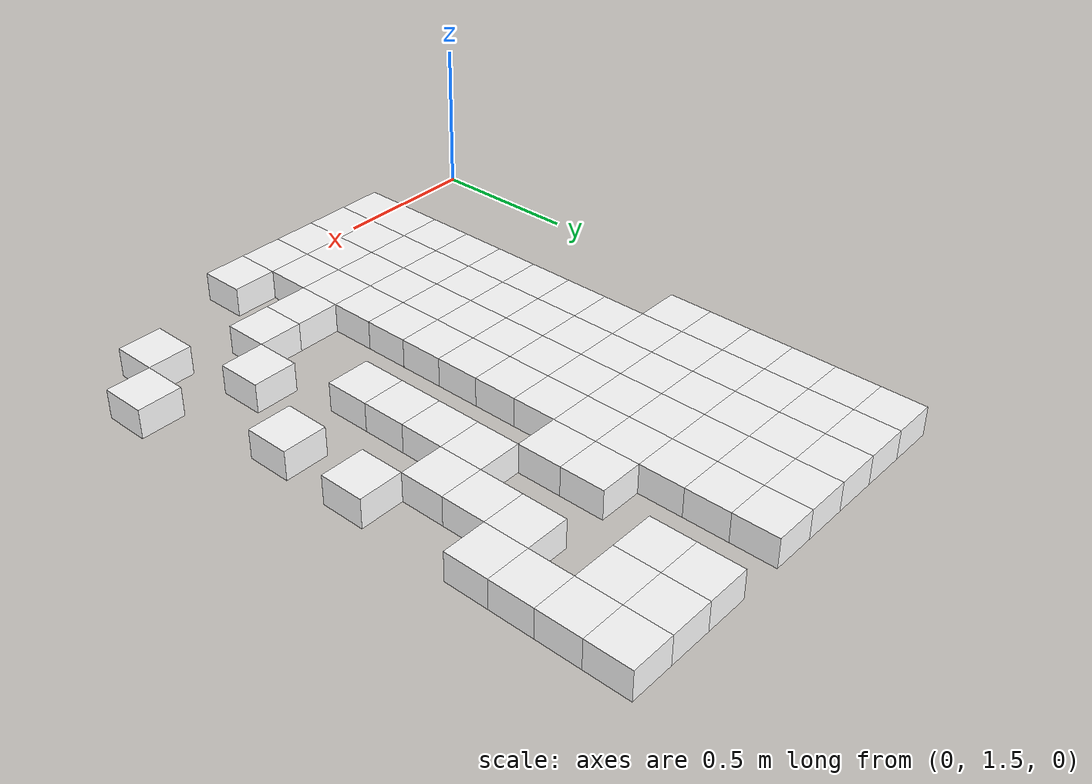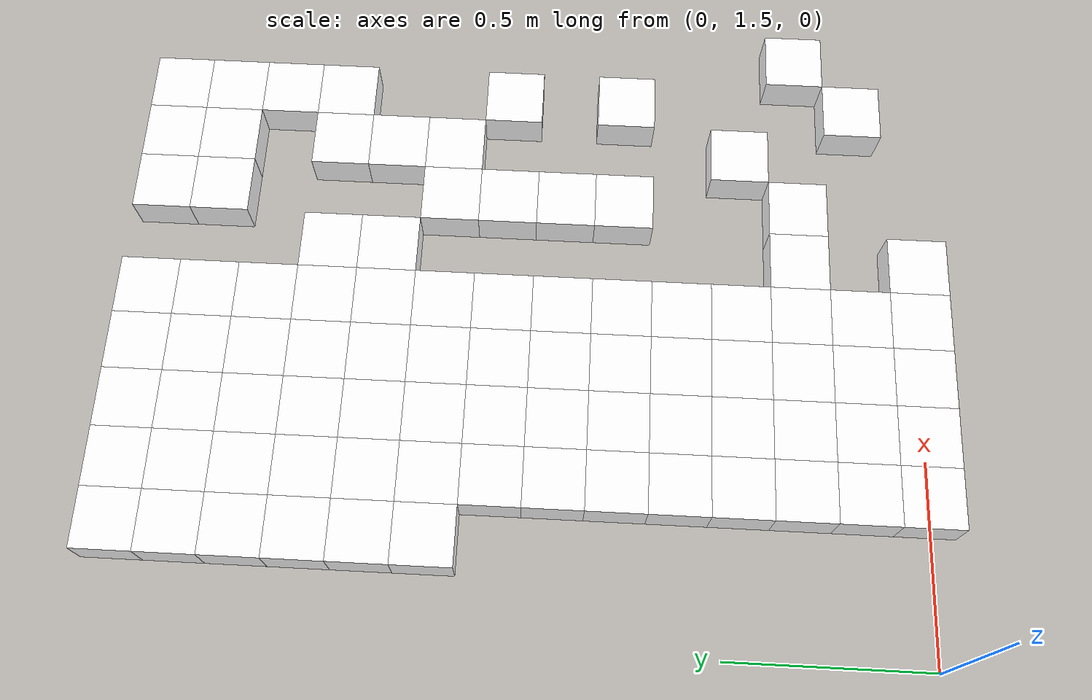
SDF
<sdf version="1.7">
 <world name="default">
  <include><uri>model://sun</uri></include>
  <model name="static_environment">
   <static>true</static>
   <link name="region_136">
    <pose>0.39999999999999947 1.5 0.0 0.0 0.0 0.0</pose>
    <collision name="region_136_collision">
     <geometry><box><size>0.15 0.15 0.1</size></box></geometry>
     <surface><friction><ode><mu>1.0</mu><mu2>1.0</mu2></ode></friction></surface>
    </collision>
    <visual name="region_136_visual">
     <geometry><box><size>0.15 0.15 0.1</size></box></geometry>
     <material><ambient>1.0 1.0 1.0 1.0</ambient><diffuse>1.0 1.0 1.0 1.0</diffuse></material>
    </visual>
   </link>
   <link name="region_137">
    <pose>0.5499999999999994 1.5 0.0 0.0 0.0 0.0</pose>
    <collision name="region_137_collision">
     <geometry><box><size>0.15 0.15 0.1</size></box></geometry>
     <surface><friction><ode><mu>1.0</mu><mu2>1.0</mu2></ode></friction></surface>
    </collision>
    <visual name="region_137_visual">
     <geometry><box><size>0.15 0.15 0.1</size></box></geometry>
     <material><ambient>1.0 1.0 1.0 1.0</ambient><diffuse>1.0 1.0 1.0 1.0</diffuse></material>
    </visual>
   </link>
   <link name="region_138">
    <pose>0.6999999999999993 1.5 0.0 0.0 0.0 0.0</pose>
    <collision name="region_138_collision">
     <geometry><box><size>0.15 0.15 0.1</size></box></geometry>
     <surface><friction><ode><mu>1.0</mu><mu2>1.0</mu2></ode></friction></surface>
    </collision>
    <visual name="region_138_visual">
     <geometry><box><size>0.15 0.15 0.1</size></box></geometry>
     <material><ambient>1.0 1.0 1.0 1.0</ambient><diffuse>1.0 1.0 1.0 1.0</diffuse></material>
    </visual>
   </link>
   <link name="region_139">
    <pose>0.8499999999999992 1.5 0.0 0.0 0.0 0.0</pose>
    <collision name="region_139_collision">
     <geometry><box><size>0.15 0.15 0.1</size></box></geometry>
     <surface><friction><ode><mu>1.0</mu><mu2>1.0</mu2></ode></friction></surface>
    </collision>
    <visual name="region_139_visual">
     <geometry><box><size>0.15 0.15 0.1</size></box></geometry>
     <material><ambient>1.0 1.0 1.0 1.0</ambient><diffuse>1.0 1.0 1.0 1.0</diffuse></material>
    </visual>
   </link>
   <link name="region_156">
    <pose>0.39999999999999947 1.65 0.0 0.0 0.0 0.0</pose>
    <collision name="region_156_collision">
     <geometry><box><size>0.15 0.15 0.1</size></box></geometry>
     <surface><friction><ode><mu>1.0</mu><mu2>1.0</mu2></ode></friction></surface>
    </collision>
    <visual name="region_156_visual">
     <geometry><box><size>0.15 0.15 0.1</size></box></geometry>
     <material><ambient>1.0 1.0 1.0 1.0</ambient><diffuse>1.0 1.0 1.0 1.0</diffuse></material>
    </visual>
   </link>
   <link name="region_157">
    <pose>0.5499999999999994 1.65 0.0 0.0 0.0 0.0</pose>
    <collision name="region_157_collision">
     <geometry><box><size>0.15 0.15 0.1</size></box></geometry>
     <surface><friction><ode><mu>1.0</mu><mu2>1.0</mu2></ode></friction></surface>
    </collision>
    <visual name="region_157_visual">
     <geometry><box><size>0.15 0.15 0.1</size></box></geometry>
     <material><ambient>1.0 1.0 1.0 1.0</ambient><diffuse>1.0 1.0 1.0 1.0</diffuse></material>
    </visual>
   </link>
   <link name="region_158">
    <pose>0.6999999999999993 1.65 0.0 0.0 0.0 0.0</pose>
    <collision name="region_158_collision">
     <geometry><box><size>0.15 0.15 0.1</size></box></geometry>
     <surface><friction><ode><mu>1.0</mu><mu2>1.0</mu2></ode></friction></surface>
    </collision>
    <visual name="region_158_visual">
     <geometry><box><size>0.15 0.15 0.1</size></box></geometry>
     <material><ambient>1.0 1.0 1.0 1.0</ambient><diffuse>1.0 1.0 1.0 1.0</diffuse></material>
    </visual>
   </link>
   <link name="region_159">
    <pose>0.8499999999999992 1.65 0.0 0.0 0.0 0.0</pose>
    <collision name="region_159_collision">
     <geometry><box><size>0.15 0.15 0.1</size></box></geometry>
     <surface><friction><ode><mu>1.0</mu><mu2>1.0</mu2></ode></friction></surface>
    </collision>
    <visual name="region_159_visual">
     <geometry><box><size>0.15 0.15 0.1</size></box></geometry>
     <material><ambient>1.0 1.0 1.0 1.0</ambient><diffuse>1.0 1.0 1.0 1.0</diffuse></material>
    </visual>
   </link>
   <link name="region_176">
    <pose>0.39999999999999947 1.7999999999999998 0.0 0.0 0.0 0.0</pose>
    <collision name="region_176_collision">
     <geometry><box><size>0.15 0.15 0.1</size></box></geometry>
     <surface><friction><ode><mu>1.0</mu><mu2>1.0</mu2></ode></friction></surface>
    </collision>
    <visual name="region_176_visual">
     <geometry><box><size>0.15 0.15 0.1</size></box></geometry>
     <material><ambient>1.0 1.0 1.0 1.0</ambient><diffuse>1.0 1.0 1.0 1.0</diffuse></material>
    </visual>
   </link>
   <link name="region_177">
    <pose>0.5499999999999994 1.7999999999999998 0.0 0.0 0.0 0.0</pose>
    <collision name="region_177_collision">
     <geometry><box><size>0.15 0.15 0.1</size></box></geometry>
     <surface><friction><ode><mu>1.0</mu><mu2>1.0</mu2></ode></friction></surface>
    </collision>
    <visual name="region_177_visual">
     <geometry><box><size>0.15 0.15 0.1</size></box></geometry>
     <material><ambient>1.0 1.0 1.0 1.0</ambient><diffuse>1.0 1.0 1.0 1.0</diffuse></material>
    </visual>
   </link>
   <link name="region_178">
    <pose>0.6999999999999993 1.7999999999999998 0.0 0.0 0.0 0.0</pose>
    <collision name="region_178_collision">
     <geometry><box><size>0.15 0.15 0.1</size></box></geometry>
     <surface><friction><ode><mu>1.0</mu><mu2>1.0</mu2></ode></friction></surface>
    </collision>
    <visual name="region_178_visual">
     <geometry><box><size>0.15 0.15 0.1</size></box></geometry>
     <material><ambient>1.0 1.0 1.0 1.0</ambient><diffuse>1.0 1.0 1.0 1.0</diffuse></material>
    </visual>
   </link>
   <link name="region_179">
    <pose>0.8499999999999992 1.7999999999999998 0.0 0.0 0.0 0.0</pose>
    <collision name="region_179_collision">
     <geometry><box><size>0.15 0.15 0.1</size></box></geometry>
     <surface><friction><ode><mu>1.0</mu><mu2>1.0</mu2></ode></friction></surface>
    </collision>
    <visual name="region_179_visual">
     <geometry><box><size>0.15 0.15 0.1</size></box></geometry>
     <material><ambient>1.0 1.0 1.0 1.0</ambient><diffuse>1.0 1.0 1.0 1.0</diffuse></material>
    </visual>
   </link>
   <link name="region_196">
    <pose>0.39999999999999947 1.9499999999999997 0.0 0.0 0.0 0.0</pose>
    <collision name="region_196_collision">
     <geometry><box><size>0.15 0.15 0.1</size></box></geometry>
     <surface><friction><ode><mu>1.0</mu><mu2>1.0</mu2></ode></friction></surface>
    </collision>
    <visual name="region_196_visual">
     <geometry><box><size>0.15 0.15 0.1</size></box></geometry>
     <material><ambient>1.0 1.0 1.0 1.0</ambient><diffuse>1.0 1.0 1.0 1.0</diffuse></material>
    </visual>
   </link>
   <link name="region_197">
    <pose>0.5499999999999994 1.9499999999999997 0.0 0.0 0.0 0.0</pose>
    <collision name="region_197_collision">
     <geometry><box><size>0.15 0.15 0.1</size></box></geometry>
     <surface><friction><ode><mu>1.0</mu><mu2>1.0</mu2></ode></friction></surface>
    </collision>
    <visual name="region_197_visual">
     <geometry><box><size>0.15 0.15 0.1</size></box></geometry>
     <material><ambient>1.0 1.0 1.0 1.0</ambient><diffuse>1.0 1.0 1.0 1.0</diffuse></material>
    </visual>
   </link>
   <link name="region_198">
    <pose>0.6999999999999993 1.9499999999999997 0.0 0.0 0.0 0.0</pose>
    <collision name="region_198_collision">
     <geometry><box><size>0.15 0.15 0.1</size></box></geometry>
     <surface><friction><ode><mu>1.0</mu><mu2>1.0</mu2></ode></friction></surface>
    </collision>
    <visual name="region_198_visual">
     <geometry><box><size>0.15 0.15 0.1</size></box></geometry>
     <material><ambient>1.0 1.0 1.0 1.0</ambient><diffuse>1.0 1.0 1.0 1.0</diffuse></material>
    </visual>
   </link>
   <link name="region_199">
    <pose>0.8499999999999992 1.9499999999999997 0.0 0.0 0.0 0.0</pose>
    <collision name="region_199_collision">
     <geometry><box><size>0.15 0.15 0.1</size></box></geometry>
     <surface><friction><ode><mu>1.0</mu><mu2>1.0</mu2></ode></friction></surface>
    </collision>
    <visual name="region_199_visual">
     <geometry><box><size>0.15 0.15 0.1</size></box></geometry>
     <material><ambient>1.0 1.0 1.0 1.0</ambient><diffuse>1.0 1.0 1.0 1.0</diffuse></material>
    </visual>
   </link>
   <link name="region_216">
    <pose>0.39999999999999947 2.0999999999999996 0.0 0.0 0.0 0.0</pose>
    <collision name="region_216_collision">
     <geometry><box><size>0.15 0.15 0.1</size></box></geometry>
     <surface><friction><ode><mu>1.0</mu><mu2>1.0</mu2></ode></friction></surface>
    </collision>
    <visual name="region_216_visual">
     <geometry><box><size>0.15 0.15 0.1</size></box></geometry>
     <material><ambient>1.0 1.0 1.0 1.0</ambient><diffuse>1.0 1.0 1.0 1.0</diffuse></material>
    </visual>
   </link>
   <link name="region_217">
    <pose>0.5499999999999994 2.0999999999999996 0.0 0.0 0.0 0.0</pose>
    <collision name="region_217_collision">
     <geometry><box><size>0.15 0.15 0.1</size></box></geometry>
     <surface><friction><ode><mu>1.0</mu><mu2>1.0</mu2></ode></friction></surface>
    </collision>
    <visual name="region_217_visual">
     <geometry><box><size>0.15 0.15 0.1</size></box></geometry>
     <material><ambient>1.0 1.0 1.0 1.0</ambient><diffuse>1.0 1.0 1.0 1.0</diffuse></material>
    </visual>
   </link>
   <link name="region_218">
    <pose>0.6999999999999993 2.0999999999999996 0.0 0.0 0.0 0.0</pose>
    <collision name="region_218_collision">
     <geometry><box><size>0.15 0.15 0.1</size></box></geometry>
     <surface><friction><ode><mu>1.0</mu><mu2>1.0</mu2></ode></friction></surface>
    </collision>
    <visual name="region_218_visual">
     <geometry><box><size>0.15 0.15 0.1</size></box></geometry>
     <material><ambient>1.0 1.0 1.0 1.0</ambient><diffuse>1.0 1.0 1.0 1.0</diffuse></material>
    </visual>
   </link>
   <link name="region_219">
    <pose>0.8499999999999992 2.0999999999999996 0.0 0.0 0.0 0.0</pose>
    <collision name="region_219_collision">
     <geometry><box><size>0.15 0.15 0.1</size></box></geometry>
     <surface><friction><ode><mu>1.0</mu><mu2>1.0</mu2></ode></friction></surface>
    </collision>
    <visual name="region_219_visual">
     <geometry><box><size>0.15 0.15 0.1</size></box></geometry>
     <material><ambient>1.0 1.0 1.0 1.0</ambient><diffuse>1.0 1.0 1.0 1.0</diffuse></material>
    </visual>
   </link>
   <link name="region_236">
    <pose>0.39999999999999947 2.2499999999999996 0.0 0.0 0.0 0.0</pose>
    <collision name="region_236_collision">
     <geometry><box><size>0.15 0.15 0.1</size></box></geometry>
     <surface><friction><ode><mu>1.0</mu><mu2>1.0</mu2></ode></friction></surface>
    </collision>
    <visual name="region_236_visual">
     <geometry><box><size>0.15 0.15 0.1</size></box></geometry>
     <material><ambient>1.0 1.0 1.0 1.0</ambient><diffuse>1.0 1.0 1.0 1.0</diffuse></material>
    </visual>
   </link>
   <link name="region_237">
    <pose>0.5499999999999994 2.2499999999999996 0.0 0.0 0.0 0.0</pose>
    <collision name="region_237_collision">
     <geometry><box><size>0.15 0.15 0.1</size></box></geometry>
     <surface><friction><ode><mu>1.0</mu><mu2>1.0</mu2></ode></friction></surface>
    </collision>
    <visual name="region_237_visual">
     <geometry><box><size>0.15 0.15 0.1</size></box></geometry>
     <material><ambient>1.0 1.0 1.0 1.0</ambient><diffuse>1.0 1.0 1.0 1.0</diffuse></material>
    </visual>
   </link>
   <link name="region_238">
    <pose>0.6999999999999993 2.2499999999999996 0.0 0.0 0.0 0.0</pose>
    <collision name="region_238_collision">
     <geometry><box><size>0.15 0.15 0.1</size></box></geometry>
     <surface><friction><ode><mu>1.0</mu><mu2>1.0</mu2></ode></friction></surface>
    </collision>
    <visual name="region_238_visual">
     <geometry><box><size>0.15 0.15 0.1</size></box></geometry>
     <material><ambient>1.0 1.0 1.0 1.0</ambient><diffuse>1.0 1.0 1.0 1.0</diffuse></material>
    </visual>
   </link>
   <link name="region_239">
    <pose>0.8499999999999992 2.2499999999999996 0.0 0.0 0.0 0.0</pose>
    <collision name="region_239_collision">
     <geometry><box><size>0.15 0.15 0.1</size></box></geometry>
     <surface><friction><ode><mu>1.0</mu><mu2>1.0</mu2></ode></friction></surface>
    </collision>
    <visual name="region_239_visual">
     <geometry><box><size>0.15 0.15 0.1</size></box></geometry>
     <material><ambient>1.0 1.0 1.0 1.0</ambient><diffuse>1.0 1.0 1.0 1.0</diffuse></material>
    </visual>
   </link>
   <link name="region_256">
    <pose>0.39999999999999947 2.3999999999999995 0.0 0.0 0.0 0.0</pose>
    <collision name="region_256_collision">
     <geometry><box><size>0.15 0.15 0.1</size></box></geometry>
     <surface><friction><ode><mu>1.0</mu><mu2>1.0</mu2></ode></friction></surface>
    </collision>
    <visual name="region_256_visual">
     <geometry><box><size>0.15 0.15 0.1</size></box></geometry>
     <material><ambient>1.0 1.0 1.0 1.0</ambient><diffuse>1.0 1.0 1.0 1.0</diffuse></material>
    </visual>
   </link>
   <link name="region_257">
    <pose>0.5499999999999994 2.3999999999999995 0.0 0.0 0.0 0.0</pose>
    <collision name="region_257_collision">
     <geometry><box><size>0.15 0.15 0.1</size></box></geometry>
     <surface><friction><ode><mu>1.0</mu><mu2>1.0</mu2></ode></friction></surface>
    </collision>
    <visual name="region_257_visual">
     <geometry><box><size>0.15 0.15 0.1</size></box></geometry>
     <material><ambient>1.0 1.0 1.0 1.0</ambient><diffuse>1.0 1.0 1.0 1.0</diffuse></material>
    </visual>
   </link>
   <link name="region_258">
    <pose>0.6999999999999993 2.3999999999999995 0.0 0.0 0.0 0.0</pose>
    <collision name="region_258_collision">
     <geometry><box><size>0.15 0.15 0.1</size></box></geometry>
     <surface><friction><ode><mu>1.0</mu><mu2>1.0</mu2></ode></friction></surface>
    </collision>
    <visual name="region_258_visual">
     <geometry><box><size>0.15 0.15 0.1</size></box></geometry>
     <material><ambient>1.0 1.0 1.0 1.0</ambient><diffuse>1.0 1.0 1.0 1.0</diffuse></material>
    </visual>
   </link>
   <link name="region_259">
    <pose>0.8499999999999992 2.3999999999999995 0.0 0.0 0.0 0.0</pose>
    <collision name="region_259_collision">
     <geometry><box><size>0.15 0.15 0.1</size></box></geometry>
     <surface><friction><ode><mu>1.0</mu><mu2>1.0</mu2></ode></friction></surface>
    </collision>
    <visual name="region_259_visual">
     <geometry><box><size>0.15 0.15 0.1</size></box></geometry>
     <material><ambient>1.0 1.0 1.0 1.0</ambient><diffuse>1.0 1.0 1.0 1.0</diffuse></material>
    </visual>
   </link>
   <link name="region_276">
    <pose>0.39999999999999947 2.5499999999999994 0.0 0.0 0.0 0.0</pose>
    <collision name="region_276_collision">
     <geometry><box><size>0.15 0.15 0.1</size></box></geometry>
     <surface><friction><ode><mu>1.0</mu><mu2>1.0</mu2></ode></friction></surface>
    </collision>
    <visual name="region_276_visual">
     <geometry><box><size>0.15 0.15 0.1</size></box></geometry>
     <material><ambient>1.0 1.0 1.0 1.0</ambient><diffuse>1.0 1.0 1.0 1.0</diffuse></material>
    </visual>
   </link>
   <link name="region_277">
    <pose>0.5499999999999994 2.5499999999999994 0.0 0.0 0.0 0.0</pose>
    <collision name="region_277_collision">
     <geometry><box><size>0.15 0.15 0.1</size></box></geometry>
     <surface><friction><ode><mu>1.0</mu><mu2>1.0</mu2></ode></friction></surface>
    </collision>
    <visual name="region_277_visual">
     <geometry><box><size>0.15 0.15 0.1</size></box></geometry>
     <material><ambient>1.0 1.0 1.0 1.0</ambient><diffuse>1.0 1.0 1.0 1.0</diffuse></material>
    </visual>
   </link>
   <link name="region_278">
    <pose>0.6999999999999993 2.5499999999999994 0.0 0.0 0.0 0.0</pose>
    <collision name="region_278_collision">
     <geometry><box><size>0.15 0.15 0.1</size></box></geometry>
     <surface><friction><ode><mu>1.0</mu><mu2>1.0</mu2></ode></friction></surface>
    </collision>
    <visual name="region_278_visual">
     <geometry><box><size>0.15 0.15 0.1</size></box></geometry>
     <material><ambient>1.0 1.0 1.0 1.0</ambient><diffuse>1.0 1.0 1.0 1.0</diffuse></material>
    </visual>
   </link>
   <link name="region_279">
    <pose>0.8499999999999992 2.5499999999999994 0.0 0.0 0.0 0.0</pose>
    <collision name="region_279_collision">
     <geometry><box><size>0.15 0.15 0.1</size></box></geometry>
     <surface><friction><ode><mu>1.0</mu><mu2>1.0</mu2></ode></friction></surface>
    </collision>
    <visual name="region_279_visual">
     <geometry><box><size>0.15 0.15 0.1</size></box></geometry>
     <material><ambient>1.0 1.0 1.0 1.0</ambient><diffuse>1.0 1.0 1.0 1.0</diffuse></material>
    </visual>
   </link>
   <link name="region_295">
    <pose>0.24999999999999956 2.6999999999999997 0.0 0.0 0.0 0.0</pose>
    <collision name="region_295_collision">
     <geometry><box><size>0.15 0.15 0.1</size></box></geometry>
     <surface><friction><ode><mu>1.0</mu><mu2>1.0</mu2></ode></friction></surface>
    </collision>
    <visual name="region_295_visual">
     <geometry><box><size>0.15 0.15 0.1</size></box></geometry>
     <material><ambient>1.0 1.0 1.0 1.0</ambient><diffuse>1.0 1.0 1.0 1.0</diffuse></material>
    </visual>
   </link>
   <link name="region_296">
    <pose>0.39999999999999947 2.6999999999999997 0.0 0.0 0.0 0.0</pose>
    <collision name="region_296_collision">
     <geometry><box><size>0.15 0.15 0.1</size></box></geometry>
     <surface><friction><ode><mu>1.0</mu><mu2>1.0</mu2></ode></friction></surface>
    </collision>
    <visual name="region_296_visual">
     <geometry><box><size>0.15 0.15 0.1</size></box></geometry>
     <material><ambient>1.0 1.0 1.0 1.0</ambient><diffuse>1.0 1.0 1.0 1.0</diffuse></material>
    </visual>
   </link>
   <link name="region_297">
    <pose>0.5499999999999994 2.6999999999999997 0.0 0.0 0.0 0.0</pose>
    <collision name="region_297_collision">
     <geometry><box><size>0.15 0.15 0.1</size></box></geometry>
     <surface><friction><ode><mu>1.0</mu><mu2>1.0</mu2></ode></friction></surface>
    </collision>
    <visual name="region_297_visual">
     <geometry><box><size>0.15 0.15 0.1</size></box></geometry>
     <material><ambient>1.0 1.0 1.0 1.0</ambient><diffuse>1.0 1.0 1.0 1.0</diffuse></material>
    </visual>
   </link>
   <link name="region_298">
    <pose>0.6999999999999993 2.6999999999999997 0.0 0.0 0.0 0.0</pose>
    <collision name="region_298_collision">
     <geometry><box><size>0.15 0.15 0.1</size></box></geometry>
     <surface><friction><ode><mu>1.0</mu><mu2>1.0</mu2></ode></friction></surface>
    </collision>
    <visual name="region_298_visual">
     <geometry><box><size>0.15 0.15 0.1</size></box></geometry>
     <material><ambient>1.0 1.0 1.0 1.0</ambient><diffuse>1.0 1.0 1.0 1.0</diffuse></material>
    </visual>
   </link>
   <link name="region_299">
    <pose>0.8499999999999992 2.6999999999999997 0.0 0.0 0.0 0.0</pose>
    <collision name="region_299_collision">
     <geometry><box><size>0.15 0.15 0.1</size></box></geometry>
     <surface><friction><ode><mu>1.0</mu><mu2>1.0</mu2></ode></friction></surface>
    </collision>
    <visual name="region_299_visual">
     <geometry><box><size>0.15 0.15 0.1</size></box></geometry>
     <material><ambient>1.0 1.0 1.0 1.0</ambient><diffuse>1.0 1.0 1.0 1.0</diffuse></material>
    </visual>
   </link>
   <link name="region_315">
    <pose>0.24999999999999956 2.8499999999999996 0.0 0.0 0.0 0.0</pose>
    <collision name="region_315_collision">
     <geometry><box><size>0.15 0.15 0.1</size></box></geometry>
     <surface><friction><ode><mu>1.0</mu><mu2>1.0</mu2></ode></friction></surface>
    </collision>
    <visual name="region_315_visual">
     <geometry><box><size>0.15 0.15 0.1</size></box></geometry>
     <material><ambient>1.0 1.0 1.0 1.0</ambient><diffuse>1.0 1.0 1.0 1.0</diffuse></material>
    </visual>
   </link>
   <link name="region_316">
    <pose>0.39999999999999947 2.8499999999999996 0.0 0.0 0.0 0.0</pose>
    <collision name="region_316_collision">
     <geometry><box><size>0.15 0.15 0.1</size></box></geometry>
     <surface><friction><ode><mu>1.0</mu><mu2>1.0</mu2></ode></friction></surface>
    </collision>
    <visual name="region_316_visual">
     <geometry><box><size>0.15 0.15 0.1</size></box></geometry>
     <material><ambient>1.0 1.0 1.0 1.0</ambient><diffuse>1.0 1.0 1.0 1.0</diffuse></material>
    </visual>
   </link>
   <link name="region_317">
    <pose>0.5499999999999994 2.8499999999999996 0.0 0.0 0.0 0.0</pose>
    <collision name="region_317_collision">
     <geometry><box><size>0.15 0.15 0.1</size></box></geometry>
     <surface><friction><ode><mu>1.0</mu><mu2>1.0</mu2></ode></friction></surface>
    </collision>
    <visual name="region_317_visual">
     <geometry><box><size>0.15 0.15 0.1</size></box></geometry>
     <material><ambient>1.0 1.0 1.0 1.0</ambient><diffuse>1.0 1.0 1.0 1.0</diffuse></material>
    </visual>
   </link>
   <link name="region_318">
    <pose>0.6999999999999993 2.8499999999999996 0.0 0.0 0.0 0.0</pose>
    <collision name="region_318_collision">
     <geometry><box><size>0.15 0.15 0.1</size></box></geometry>
     <surface><friction><ode><mu>1.0</mu><mu2>1.0</mu2></ode></friction></surface>
    </collision>
    <visual name="region_318_visual">
     <geometry><box><size>0.15 0.15 0.1</size></box></geometry>
     <material><ambient>1.0 1.0 1.0 1.0</ambient><diffuse>1.0 1.0 1.0 1.0</diffuse></material>
    </visual>
   </link>
   <link name="region_319">
    <pose>0.8499999999999992 2.8499999999999996 0.0 0.0 0.0 0.0</pose>
    <collision name="region_319_collision">
     <geometry><box><size>0.15 0.15 0.1</size></box></geometry>
     <surface><friction><ode><mu>1.0</mu><mu2>1.0</mu2></ode></friction></surface>
    </collision>
    <visual name="region_319_visual">
     <geometry><box><size>0.15 0.15 0.1</size></box></geometry>
     <material><ambient>1.0 1.0 1.0 1.0</ambient><diffuse>1.0 1.0 1.0 1.0</diffuse></material>
    </visual>
   </link>
   <link name="region_335">
    <pose>0.24999999999999956 2.9999999999999996 0.0 0.0 0.0 0.0</pose>
    <collision name="region_335_collision">
     <geometry><box><size>0.15 0.15 0.1</size></box></geometry>
     <surface><friction><ode><mu>1.0</mu><mu2>1.0</mu2></ode></friction></surface>
    </collision>
    <visual name="region_335_visual">
     <geometry><box><size>0.15 0.15 0.1</size></box></geometry>
     <material><ambient>1.0 1.0 1.0 1.0</ambient><diffuse>1.0 1.0 1.0 1.0</diffuse></material>
    </visual>
   </link>
   <link name="region_336">
    <pose>0.39999999999999947 2.9999999999999996 0.0 0.0 0.0 0.0</pose>
    <collision name="region_336_collision">
     <geometry><box><size>0.15 0.15 0.1</size></box></geometry>
     <surface><friction><ode><mu>1.0</mu><mu2>1.0</mu2></ode></friction></surface>
    </collision>
    <visual name="region_336_visual">
     <geometry><box><size>0.15 0.15 0.1</size></box></geometry>
     <material><ambient>1.0 1.0 1.0 1.0</ambient><diffuse>1.0 1.0 1.0 1.0</diffuse></material>
    </visual>
   </link>
   <link name="region_337">
    <pose>0.5499999999999994 2.9999999999999996 0.0 0.0 0.0 0.0</pose>
    <collision name="region_337_collision">
     <geometry><box><size>0.15 0.15 0.1</size></box></geometry>
     <surface><friction><ode><mu>1.0</mu><mu2>1.0</mu2></ode></friction></surface>
    </collision>
    <visual name="region_337_visual">
     <geometry><box><size>0.15 0.15 0.1</size></box></geometry>
     <material><ambient>1.0 1.0 1.0 1.0</ambient><diffuse>1.0 1.0 1.0 1.0</diffuse></material>
    </visual>
   </link>
   <link name="region_338">
    <pose>0.6999999999999993 2.9999999999999996 0.0 0.0 0.0 0.0</pose>
    <collision name="region_338_collision">
     <geometry><box><size>0.15 0.15 0.1</size></box></geometry>
     <surface><friction><ode><mu>1.0</mu><mu2>1.0</mu2></ode></friction></surface>
    </collision>
    <visual name="region_338_visual">
     <geometry><box><size>0.15 0.15 0.1</size></box></geometry>
     <material><ambient>1.0 1.0 1.0 1.0</ambient><diffuse>1.0 1.0 1.0 1.0</diffuse></material>
    </visual>
   </link>
   <link name="region_339">
    <pose>0.8499999999999992 2.9999999999999996 0.0 0.0 0.0 0.0</pose>
    <collision name="region_339_collision">
     <geometry><box><size>0.15 0.15 0.1</size></box></geometry>
     <surface><friction><ode><mu>1.0</mu><mu2>1.0</mu2></ode></friction></surface>
    </collision>
    <visual name="region_339_visual">
     <geometry><box><size>0.15 0.15 0.1</size></box></geometry>
     <material><ambient>1.0 1.0 1.0 1.0</ambient><diffuse>1.0 1.0 1.0 1.0</diffuse></material>
    </visual>
   </link>
   <link name="region_355">
    <pose>0.24999999999999956 3.1499999999999995 0.0 0.0 0.0 0.0</pose>
    <collision name="region_355_collision">
     <geometry><box><size>0.15 0.15 0.1</size></box></geometry>
     <surface><friction><ode><mu>1.0</mu><mu2>1.0</mu2></ode></friction></surface>
    </collision>
    <visual name="region_355_visual">
     <geometry><box><size>0.15 0.15 0.1</size></box></geometry>
     <material><ambient>1.0 1.0 1.0 1.0</ambient><diffuse>1.0 1.0 1.0 1.0</diffuse></material>
    </visual>
   </link>
   <link name="region_356">
    <pose>0.39999999999999947 3.1499999999999995 0.0 0.0 0.0 0.0</pose>
    <collision name="region_356_collision">
     <geometry><box><size>0.15 0.15 0.1</size></box></geometry>
     <surface><friction><ode><mu>1.0</mu><mu2>1.0</mu2></ode></friction></surface>
    </collision>
    <visual name="region_356_visual">
     <geometry><box><size>0.15 0.15 0.1</size></box></geometry>
     <material><ambient>1.0 1.0 1.0 1.0</ambient><diffuse>1.0 1.0 1.0 1.0</diffuse></material>
    </visual>
   </link>
   <link name="region_357">
    <pose>0.5499999999999994 3.1499999999999995 0.0 0.0 0.0 0.0</pose>
    <collision name="region_357_collision">
     <geometry><box><size>0.15 0.15 0.1</size></box></geometry>
     <surface><friction><ode><mu>1.0</mu><mu2>1.0</mu2></ode></friction></surface>
    </collision>
    <visual name="region_357_visual">
     <geometry><box><size>0.15 0.15 0.1</size></box></geometry>
     <material><ambient>1.0 1.0 1.0 1.0</ambient><diffuse>1.0 1.0 1.0 1.0</diffuse></material>
    </visual>
   </link>
   <link name="region_358">
    <pose>0.6999999999999993 3.1499999999999995 0.0 0.0 0.0 0.0</pose>
    <collision name="region_358_collision">
     <geometry><box><size>0.15 0.15 0.1</size></box></geometry>
     <surface><friction><ode><mu>1.0</mu><mu2>1.0</mu2></ode></friction></surface>
    </collision>
    <visual name="region_358_visual">
     <geometry><box><size>0.15 0.15 0.1</size></box></geometry>
     <material><ambient>1.0 1.0 1.0 1.0</ambient><diffuse>1.0 1.0 1.0 1.0</diffuse></material>
    </visual>
   </link>
   <link name="region_359">
    <pose>0.8499999999999992 3.1499999999999995 0.0 0.0 0.0 0.0</pose>
    <collision name="region_359_collision">
     <geometry><box><size>0.15 0.15 0.1</size></box></geometry>
     <surface><friction><ode><mu>1.0</mu><mu2>1.0</mu2></ode></friction></surface>
    </collision>
    <visual name="region_359_visual">
     <geometry><box><size>0.15 0.15 0.1</size></box></geometry>
     <material><ambient>1.0 1.0 1.0 1.0</ambient><diffuse>1.0 1.0 1.0 1.0</diffuse></material>
    </visual>
   </link>
   <link name="region_375">
    <pose>0.24999999999999956 3.2999999999999994 0.0 0.0 0.0 0.0</pose>
    <collision name="region_375_collision">
     <geometry><box><size>0.15 0.15 0.1</size></box></geometry>
     <surface><friction><ode><mu>1.0</mu><mu2>1.0</mu2></ode></friction></surface>
    </collision>
    <visual name="region_375_visual">
     <geometry><box><size>0.15 0.15 0.1</size></box></geometry>
     <material><ambient>1.0 1.0 1.0 1.0</ambient><diffuse>1.0 1.0 1.0 1.0</diffuse></material>
    </visual>
   </link>
   <link name="region_376">
    <pose>0.39999999999999947 3.2999999999999994 0.0 0.0 0.0 0.0</pose>
    <collision name="region_376_collision">
     <geometry><box><size>0.15 0.15 0.1</size></box></geometry>
     <surface><friction><ode><mu>1.0</mu><mu2>1.0</mu2></ode></friction></surface>
    </collision>
    <visual name="region_376_visual">
     <geometry><box><size>0.15 0.15 0.1</size></box></geometry>
     <material><ambient>1.0 1.0 1.0 1.0</ambient><diffuse>1.0 1.0 1.0 1.0</diffuse></material>
    </visual>
   </link>
   <link name="region_377">
    <pose>0.5499999999999994 3.2999999999999994 0.0 0.0 0.0 0.0</pose>
    <collision name="region_377_collision">
     <geometry><box><size>0.15 0.15 0.1</size></box></geometry>
     <surface><friction><ode><mu>1.0</mu><mu2>1.0</mu2></ode></friction></surface>
    </collision>
    <visual name="region_377_visual">
     <geometry><box><size>0.15 0.15 0.1</size></box></geometry>
     <material><ambient>1.0 1.0 1.0 1.0</ambient><diffuse>1.0 1.0 1.0 1.0</diffuse></material>
    </visual>
   </link>
   <link name="region_378">
    <pose>0.6999999999999993 3.2999999999999994 0.0 0.0 0.0 0.0</pose>
    <collision name="region_378_collision">
     <geometry><box><size>0.15 0.15 0.1</size></box></geometry>
     <surface><friction><ode><mu>1.0</mu><mu2>1.0</mu2></ode></friction></surface>
    </collision>
    <visual name="region_378_visual">
     <geometry><box><size>0.15 0.15 0.1</size></box></geometry>
     <material><ambient>1.0 1.0 1.0 1.0</ambient><diffuse>1.0 1.0 1.0 1.0</diffuse></material>
    </visual>
   </link>
   <link name="region_379">
    <pose>0.8499999999999992 3.2999999999999994 0.0 0.0 0.0 0.0</pose>
    <collision name="region_379_collision">
     <geometry><box><size>0.15 0.15 0.1</size></box></geometry>
     <surface><friction><ode><mu>1.0</mu><mu2>1.0</mu2></ode></friction></surface>
    </collision>
    <visual name="region_379_visual">
     <geometry><box><size>0.15 0.15 0.1</size></box></geometry>
     <material><ambient>1.0 1.0 1.0 1.0</ambient><diffuse>1.0 1.0 1.0 1.0</diffuse></material>
    </visual>
   </link>
   <link name="region_395">
    <pose>0.24999999999999956 3.4499999999999993 0.0 0.0 0.0 0.0</pose>
    <collision name="region_395_collision">
     <geometry><box><size>0.15 0.15 0.1</size></box></geometry>
     <surface><friction><ode><mu>1.0</mu><mu2>1.0</mu2></ode></friction></surface>
    </collision>
    <visual name="region_395_visual">
     <geometry><box><size>0.15 0.15 0.1</size></box></geometry>
     <material><ambient>1.0 1.0 1.0 1.0</ambient><diffuse>1.0 1.0 1.0 1.0</diffuse></material>
    </visual>
   </link>
   <link name="region_396">
    <pose>0.39999999999999947 3.4499999999999993 0.0 0.0 0.0 0.0</pose>
    <collision name="region_396_collision">
     <geometry><box><size>0.15 0.15 0.1</size></box></geometry>
     <surface><friction><ode><mu>1.0</mu><mu2>1.0</mu2></ode></friction></surface>
    </collision>
    <visual name="region_396_visual">
     <geometry><box><size>0.15 0.15 0.1</size></box></geometry>
     <material><ambient>1.0 1.0 1.0 1.0</ambient><diffuse>1.0 1.0 1.0 1.0</diffuse></material>
    </visual>
   </link>
   <link name="region_397">
    <pose>0.5499999999999994 3.4499999999999993 0.0 0.0 0.0 0.0</pose>
    <collision name="region_397_collision">
     <geometry><box><size>0.15 0.15 0.1</size></box></geometry>
     <surface><friction><ode><mu>1.0</mu><mu2>1.0</mu2></ode></friction></surface>
    </collision>
    <visual name="region_397_visual">
     <geometry><box><size>0.15 0.15 0.1</size></box></geometry>
     <material><ambient>1.0 1.0 1.0 1.0</ambient><diffuse>1.0 1.0 1.0 1.0</diffuse></material>
    </visual>
   </link>
   <link name="region_398">
    <pose>0.6999999999999993 3.4499999999999993 0.0 0.0 0.0 0.0</pose>
    <collision name="region_398_collision">
     <geometry><box><size>0.15 0.15 0.1</size></box></geometry>
     <surface><friction><ode><mu>1.0</mu><mu2>1.0</mu2></ode></friction></surface>
    </collision>
    <visual name="region_398_visual">
     <geometry><box><size>0.15 0.15 0.1</size></box></geometry>
     <material><ambient>1.0 1.0 1.0 1.0</ambient><diffuse>1.0 1.0 1.0 1.0</diffuse></material>
    </visual>
   </link>
   <link name="region_399">
    <pose>0.8499999999999992 3.4499999999999993 0.0 0.0 0.0 0.0</pose>
    <collision name="region_399_collision">
     <geometry><box><size>0.15 0.15 0.1</size></box></geometry>
     <surface><friction><ode><mu>1.0</mu><mu2>1.0</mu2></ode></friction></surface>
    </collision>
    <visual name="region_399_visual">
     <geometry><box><size>0.15 0.15 0.1</size></box></geometry>
     <material><ambient>1.0 1.0 1.0 1.0</ambient><diffuse>1.0 1.0 1.0 1.0</diffuse></material>
    </visual>
   </link>
   <link name="region_450">
    <pose>1.0 1.5 0.0 0.0 0.0 0.0</pose>
    <collision name="region_450_collision">
     <geometry><box><size>0.15 0.15 0.1</size></box></geometry>
     <surface><friction><ode><mu>1.0</mu><mu2>1.0</mu2></ode></friction></surface>
    </collision>
    <visual name="region_450_visual">
     <geometry><box><size>0.15 0.15 0.1</size></box></geometry>
     <material><ambient>1.0 1.0 1.0 1.0</ambient><diffuse>1.0 1.0 1.0 1.0</diffuse></material>
    </visual>
   </link>
   <link name="region_460">
    <pose>1.4499999999999997 1.65 0.0 0.0 0.0 0.0</pose>
    <collision name="region_460_collision">
     <geometry><box><size>0.15 0.15 0.1</size></box></geometry>
     <surface><friction><ode><mu>1.0</mu><mu2>1.0</mu2></ode></friction></surface>
    </collision>
    <visual name="region_460_visual">
     <geometry><box><size>0.15 0.15 0.1</size></box></geometry>
     <material><ambient>1.0 1.0 1.0 1.0</ambient><diffuse>1.0 1.0 1.0 1.0</diffuse></material>
    </visual>
   </link>
   <link name="region_469">
    <pose>1.0 1.7999999999999998 0.0 0.0 0.0 0.0</pose>
    <collision name="region_469_collision">
     <geometry><box><size>0.15 0.15 0.1</size></box></geometry>
     <surface><friction><ode><mu>1.0</mu><mu2>1.0</mu2></ode></friction></surface>
    </collision>
    <visual name="region_469_visual">
     <geometry><box><size>0.15 0.15 0.1</size></box></geometry>
     <material><ambient>1.0 1.0 1.0 1.0</ambient><diffuse>1.0 1.0 1.0 1.0</diffuse></material>
    </visual>
   </link>
   <link name="region_470">
    <pose>1.15 1.7999999999999998 0.0 0.0 0.0 0.0</pose>
    <collision name="region_470_collision">
     <geometry><box><size>0.15 0.15 0.1</size></box></geometry>
     <surface><friction><ode><mu>1.0</mu><mu2>1.0</mu2></ode></friction></surface>
    </collision>
    <visual name="region_470_visual">
     <geometry><box><size>0.15 0.15 0.1</size></box></geometry>
     <material><ambient>1.0 1.0 1.0 1.0</ambient><diffuse>1.0 1.0 1.0 1.0</diffuse></material>
    </visual>
   </link>
   <link name="region_471">
    <pose>1.5999999999999996 1.7999999999999998 0.0 0.0 0.0 0.0</pose>
    <collision name="region_471_collision">
     <geometry><box><size>0.15 0.15 0.1</size></box></geometry>
     <surface><friction><ode><mu>1.0</mu><mu2>1.0</mu2></ode></friction></surface>
    </collision>
    <visual name="region_471_visual">
     <geometry><box><size>0.15 0.15 0.1</size></box></geometry>
     <material><ambient>1.0 1.0 1.0 1.0</ambient><diffuse>1.0 1.0 1.0 1.0</diffuse></material>
    </visual>
   </link>
   <link name="region_478">
    <pose>1.2999999999999998 1.9499999999999997 0.0 0.0 0.0 0.0</pose>
    <collision name="region_478_collision">
     <geometry><box><size>0.15 0.15 0.1</size></box></geometry>
     <surface><friction><ode><mu>1.0</mu><mu2>1.0</mu2></ode></friction></surface>
    </collision>
    <visual name="region_478_visual">
     <geometry><box><size>0.15 0.15 0.1</size></box></geometry>
     <material><ambient>1.0 1.0 1.0 1.0</ambient><diffuse>1.0 1.0 1.0 1.0</diffuse></material>
    </visual>
   </link>
   <link name="region_489">
    <pose>1.15 2.2499999999999996 0.0 0.0 0.0 0.0</pose>
    <collision name="region_489_collision">
     <geometry><box><size>0.15 0.15 0.1</size></box></geometry>
     <surface><friction><ode><mu>1.0</mu><mu2>1.0</mu2></ode></friction></surface>
    </collision>
    <visual name="region_489_visual">
     <geometry><box><size>0.15 0.15 0.1</size></box></geometry>
     <material><ambient>1.0 1.0 1.0 1.0</ambient><diffuse>1.0 1.0 1.0 1.0</diffuse></material>
    </visual>
   </link>
   <link name="region_490">
    <pose>1.4499999999999997 2.2499999999999996 0.0 0.0 0.0 0.0</pose>
    <collision name="region_490_collision">
     <geometry><box><size>0.15 0.15 0.1</size></box></geometry>
     <surface><friction><ode><mu>1.0</mu><mu2>1.0</mu2></ode></friction></surface>
    </collision>
    <visual name="region_490_visual">
     <geometry><box><size>0.15 0.15 0.1</size></box></geometry>
     <material><ambient>1.0 1.0 1.0 1.0</ambient><diffuse>1.0 1.0 1.0 1.0</diffuse></material>
    </visual>
   </link>
   <link name="region_497">
    <pose>1.15 2.3999999999999995 0.0 0.0 0.0 0.0</pose>
    <collision name="region_497_collision">
     <geometry><box><size>0.15 0.15 0.1</size></box></geometry>
     <surface><friction><ode><mu>1.0</mu><mu2>1.0</mu2></ode></friction></surface>
    </collision>
    <visual name="region_497_visual">
     <geometry><box><size>0.15 0.15 0.1</size></box></geometry>
     <material><ambient>1.0 1.0 1.0 1.0</ambient><diffuse>1.0 1.0 1.0 1.0</diffuse></material>
    </visual>
   </link>
   <link name="region_506">
    <pose>1.15 2.5499999999999994 0.0 0.0 0.0 0.0</pose>
    <collision name="region_506_collision">
     <geometry><box><size>0.15 0.15 0.1</size></box></geometry>
     <surface><friction><ode><mu>1.0</mu><mu2>1.0</mu2></ode></friction></surface>
    </collision>
    <visual name="region_506_visual">
     <geometry><box><size>0.15 0.15 0.1</size></box></geometry>
     <material><ambient>1.0 1.0 1.0 1.0</ambient><diffuse>1.0 1.0 1.0 1.0</diffuse></material>
    </visual>
   </link>
   <link name="region_507">
    <pose>1.4499999999999997 2.5499999999999994 0.0 0.0 0.0 0.0</pose>
    <collision name="region_507_collision">
     <geometry><box><size>0.15 0.15 0.1</size></box></geometry>
     <surface><friction><ode><mu>1.0</mu><mu2>1.0</mu2></ode></friction></surface>
    </collision>
    <visual name="region_507_visual">
     <geometry><box><size>0.15 0.15 0.1</size></box></geometry>
     <material><ambient>1.0 1.0 1.0 1.0</ambient><diffuse>1.0 1.0 1.0 1.0</diffuse></material>
    </visual>
   </link>
   <link name="region_513">
    <pose>1.15 2.6999999999999997 0.0 0.0 0.0 0.0</pose>
    <collision name="region_513_collision">
     <geometry><box><size>0.15 0.15 0.1</size></box></geometry>
     <surface><friction><ode><mu>1.0</mu><mu2>1.0</mu2></ode></friction></surface>
    </collision>
    <visual name="region_513_visual">
     <geometry><box><size>0.15 0.15 0.1</size></box></geometry>
     <material><ambient>1.0 1.0 1.0 1.0</ambient><diffuse>1.0 1.0 1.0 1.0</diffuse></material>
    </visual>
   </link>
   <link name="region_514">
    <pose>1.2999999999999998 2.6999999999999997 0.0 0.0 0.0 0.0</pose>
    <collision name="region_514_collision">
     <geometry><box><size>0.15 0.15 0.1</size></box></geometry>
     <surface><friction><ode><mu>1.0</mu><mu2>1.0</mu2></ode></friction></surface>
    </collision>
    <visual name="region_514_visual">
     <geometry><box><size>0.15 0.15 0.1</size></box></geometry>
     <material><ambient>1.0 1.0 1.0 1.0</ambient><diffuse>1.0 1.0 1.0 1.0</diffuse></material>
    </visual>
   </link>
   <link name="region_520">
    <pose>1.0 2.8499999999999996 0.0 0.0 0.0 0.0</pose>
    <collision name="region_520_collision">
     <geometry><box><size>0.15 0.15 0.1</size></box></geometry>
     <surface><friction><ode><mu>1.0</mu><mu2>1.0</mu2></ode></friction></surface>
    </collision>
    <visual name="region_520_visual">
     <geometry><box><size>0.15 0.15 0.1</size></box></geometry>
     <material><ambient>1.0 1.0 1.0 1.0</ambient><diffuse>1.0 1.0 1.0 1.0</diffuse></material>
    </visual>
   </link>
   <link name="region_521">
    <pose>1.2999999999999998 2.8499999999999996 0.0 0.0 0.0 0.0</pose>
    <collision name="region_521_collision">
     <geometry><box><size>0.15 0.15 0.1</size></box></geometry>
     <surface><friction><ode><mu>1.0</mu><mu2>1.0</mu2></ode></friction></surface>
    </collision>
    <visual name="region_521_visual">
     <geometry><box><size>0.15 0.15 0.1</size></box></geometry>
     <material><ambient>1.0 1.0 1.0 1.0</ambient><diffuse>1.0 1.0 1.0 1.0</diffuse></material>
    </visual>
   </link>
   <link name="region_528">
    <pose>1.0 2.9999999999999996 0.0 0.0 0.0 0.0</pose>
    <collision name="region_528_collision">
     <geometry><box><size>0.15 0.15 0.1</size></box></geometry>
     <surface><friction><ode><mu>1.0</mu><mu2>1.0</mu2></ode></friction></surface>
    </collision>
    <visual name="region_528_visual">
     <geometry><box><size>0.15 0.15 0.1</size></box></geometry>
     <material><ambient>1.0 1.0 1.0 1.0</ambient><diffuse>1.0 1.0 1.0 1.0</diffuse></material>
    </visual>
   </link>
   <link name="region_529">
    <pose>1.2999999999999998 2.9999999999999996 0.0 0.0 0.0 0.0</pose>
    <collision name="region_529_collision">
     <geometry><box><size>0.15 0.15 0.1</size></box></geometry>
     <surface><friction><ode><mu>1.0</mu><mu2>1.0</mu2></ode></friction></surface>
    </collision>
    <visual name="region_529_visual">
     <geometry><box><size>0.15 0.15 0.1</size></box></geometry>
     <material><ambient>1.0 1.0 1.0 1.0</ambient><diffuse>1.0 1.0 1.0 1.0</diffuse></material>
    </visual>
   </link>
   <link name="region_530">
    <pose>1.4499999999999997 2.9999999999999996 0.0 0.0 0.0 0.0</pose>
    <collision name="region_530_collision">
     <geometry><box><size>0.15 0.15 0.1</size></box></geometry>
     <surface><friction><ode><mu>1.0</mu><mu2>1.0</mu2></ode></friction></surface>
    </collision>
    <visual name="region_530_visual">
     <geometry><box><size>0.15 0.15 0.1</size></box></geometry>
     <material><ambient>1.0 1.0 1.0 1.0</ambient><diffuse>1.0 1.0 1.0 1.0</diffuse></material>
    </visual>
   </link>
   <link name="region_541">
    <pose>1.4499999999999997 3.1499999999999995 0.0 0.0 0.0 0.0</pose>
    <collision name="region_541_collision">
     <geometry><box><size>0.15 0.15 0.1</size></box></geometry>
     <surface><friction><ode><mu>1.0</mu><mu2>1.0</mu2></ode></friction></surface>
    </collision>
    <visual name="region_541_visual">
     <geometry><box><size>0.15 0.15 0.1</size></box></geometry>
     <material><ambient>1.0 1.0 1.0 1.0</ambient><diffuse>1.0 1.0 1.0 1.0</diffuse></material>
    </visual>
   </link>
   <link name="region_548">
    <pose>1.15 3.2999999999999994 0.0 0.0 0.0 0.0</pose>
    <collision name="region_548_collision">
     <geometry><box><size>0.15 0.15 0.1</size></box></geometry>
     <surface><friction><ode><mu>1.0</mu><mu2>1.0</mu2></ode></friction></surface>
    </collision>
    <visual name="region_548_visual">
     <geometry><box><size>0.15 0.15 0.1</size></box></geometry>
     <material><ambient>1.0 1.0 1.0 1.0</ambient><diffuse>1.0 1.0 1.0 1.0</diffuse></material>
    </visual>
   </link>
   <link name="region_549">
    <pose>1.2999999999999998 3.2999999999999994 0.0 0.0 0.0 0.0</pose>
    <collision name="region_549_collision">
     <geometry><box><size>0.15 0.15 0.1</size></box></geometry>
     <surface><friction><ode><mu>1.0</mu><mu2>1.0</mu2></ode></friction></surface>
    </collision>
    <visual name="region_549_visual">
     <geometry><box><size>0.15 0.15 0.1</size></box></geometry>
     <material><ambient>1.0 1.0 1.0 1.0</ambient><diffuse>1.0 1.0 1.0 1.0</diffuse></material>
    </visual>
   </link>
   <link name="region_550">
    <pose>1.4499999999999997 3.2999999999999994 0.0 0.0 0.0 0.0</pose>
    <collision name="region_550_collision">
     <geometry><box><size>0.15 0.15 0.1</size></box></geometry>
     <surface><friction><ode><mu>1.0</mu><mu2>1.0</mu2></ode></friction></surface>
    </collision>
    <visual name="region_550_visual">
     <geometry><box><size>0.15 0.15 0.1</size></box></geometry>
     <material><ambient>1.0 1.0 1.0 1.0</ambient><diffuse>1.0 1.0 1.0 1.0</diffuse></material>
    </visual>
   </link>
   <link name="region_554">
    <pose>1.15 3.4499999999999993 0.0 0.0 0.0 0.0</pose>
    <collision name="region_554_collision">
     <geometry><box><size>0.15 0.15 0.1</size></box></geometry>
     <surface><friction><ode><mu>1.0</mu><mu2>1.0</mu2></ode></friction></surface>
    </collision>
    <visual name="region_554_visual">
     <geometry><box><size>0.15 0.15 0.1</size></box></geometry>
     <material><ambient>1.0 1.0 1.0 1.0</ambient><diffuse>1.0 1.0 1.0 1.0</diffuse></material>
    </visual>
   </link>
   <link name="region_555">
    <pose>1.2999999999999998 3.4499999999999993 0.0 0.0 0.0 0.0</pose>
    <collision name="region_555_collision">
     <geometry><box><size>0.15 0.15 0.1</size></box></geometry>
     <surface><friction><ode><mu>1.0</mu><mu2>1.0</mu2></ode></friction></surface>
    </collision>
    <visual name="region_555_visual">
     <geometry><box><size>0.15 0.15 0.1</size></box></geometry>
     <material><ambient>1.0 1.0 1.0 1.0</ambient><diffuse>1.0 1.0 1.0 1.0</diffuse></material>
    </visual>
   </link>
   <link name="region_556">
    <pose>1.4499999999999997 3.4499999999999993 0.0 0.0 0.0 0.0</pose>
    <collision name="region_556_collision">
     <geometry><box><size>0.15 0.15 0.1</size></box></geometry>
     <surface><friction><ode><mu>1.0</mu><mu2>1.0</mu2></ode></friction></surface>
    </collision>
    <visual name="region_556_visual">
     <geometry><box><size>0.15 0.15 0.1</size></box></geometry>
     <material><ambient>1.0 1.0 1.0 1.0</ambient><diffuse>1.0 1.0 1.0 1.0</diffuse></material>
    </visual>
   </link>
  </model>
 </world>
</sdf>
